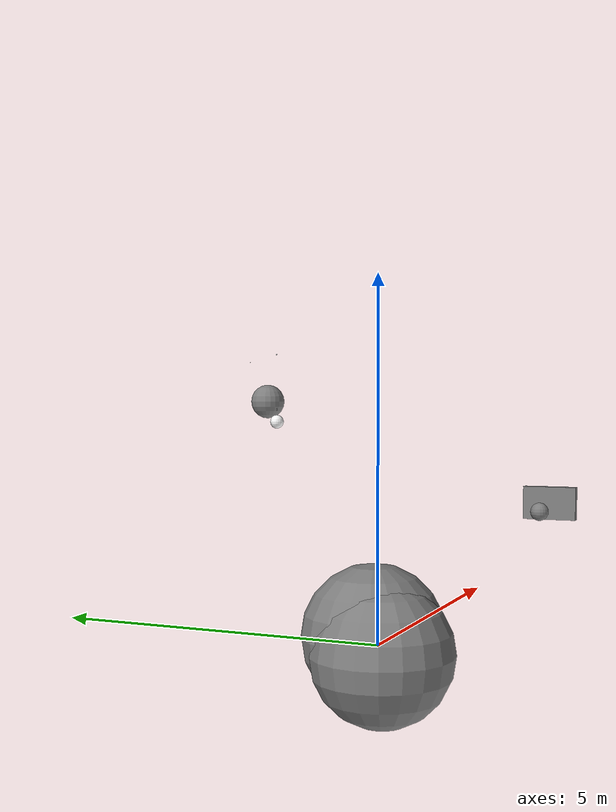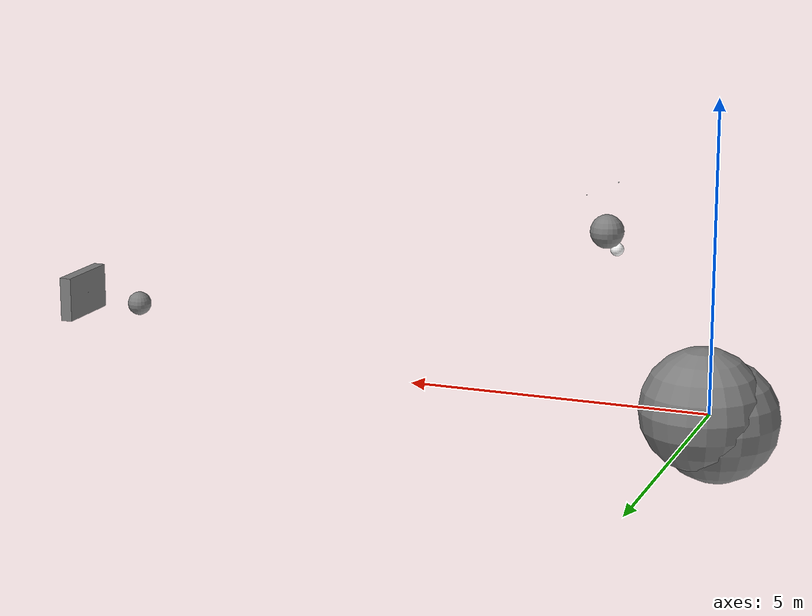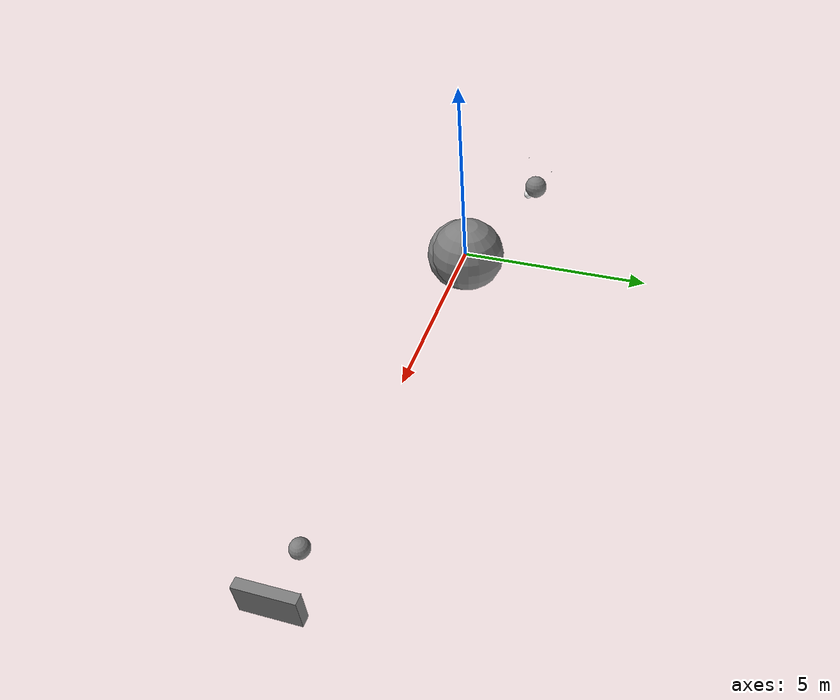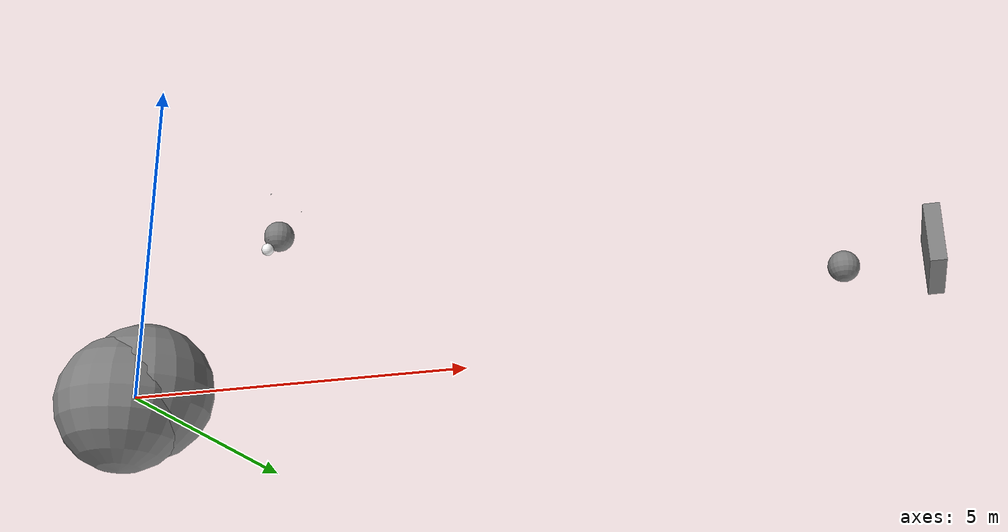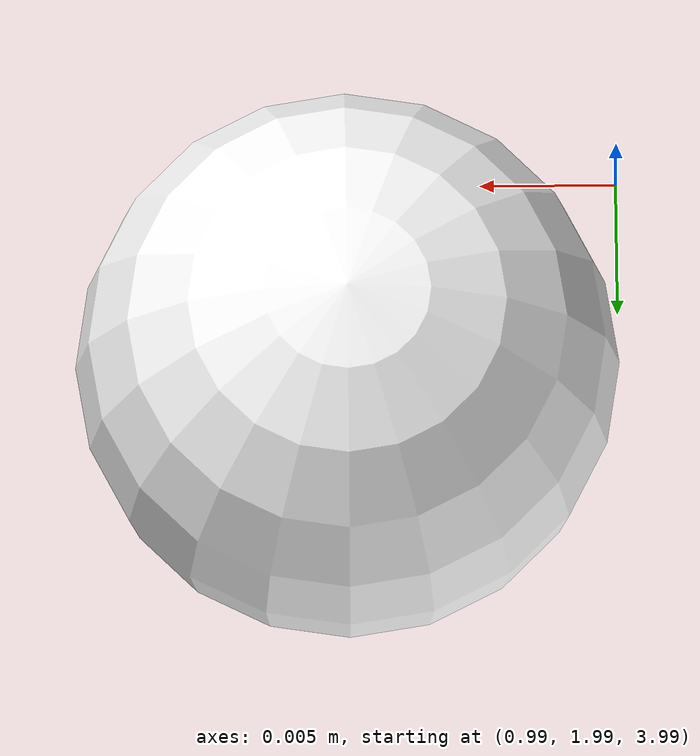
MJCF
<mujoco model="sensor">
  <asset>
    <material name="material"/>
  </asset>
  <worldbody>
    <!-- tree 0 -->
    <body name="body0" pos="1 2 3">
      <joint name="hinge0" type="hinge" axis="1 0 0"/>
      <geom size="0.1" material="material"/>
      <site name="site_rangefinder0" pos="-1e-3 0 0.2"/>
      <site name="site_rangefinder1" pos="-1e-3 0 0.175"/>
      <site name="site0" pos=".1 .2 .3"/>
      <body name="body1" pos="0.1 0.2 0.3">
        <joint name="hinge1" type="hinge" axis="0 1 0"/>
        <geom size="0.25"/>
        <site name="site1" pos=".2 .4 .6"/>
      </body>
    </body>

    <!-- body 2 -->
    <body name="body2" pos=".1 .1 .1">
      <joint name="ballquat2" type="ball" pos="0.1 0.1 0.1"/>
      <geom size="1"/>
    </body>

    <!-- body 3 -->
    <body name="body3" pos="-.1 -.1 -.1">
      <joint name="ballquat3" type="ball" pos="0.1 0.2 0.3"/>
      <geom size="1"/>
      <site name="site3"/>
    </body>

    <!-- bodies for camera projection -->
    <body pos="11.1 0 1">
      <geom type="box" size=".1 .6 .375"/>
      <site name="frontorigin" pos="-.1  .6  .375"/>
      <site name="frontcenter" pos="-.1 0 0"/>
    </body>
    <body pos="10 0 0">
      <joint axis="0 0 1" range="-180 180" limited="false"/>
      <geom type="sphere" size=".2" pos="0 0 0.9"/>
      <camera pos="0 0 1" xyaxes="0 -1 0 0 0 1" fovy="41.11209"
              resolution="1920 1200" name="fixedcamera"/>
    </body>

    <!-- body for rangefinder -->
    <body name="body_rangefinder" pos="1 2 4">
      <geom size="0.01" material="material"/>
    </body>
  </worldbody>

  <actuator>
    <motor name="motor0" joint="hinge0" ctrlrange="-1 1" gear="10"
      ctrllimited="true"/>
    <motor name="motor1" joint="hinge1" ctrlrange="-1 1" gear="10"
      ctrllimited="true"/>
  </actuator>

  <sensor>
    <magnetometer name="magnetometer0" site="site0"/>
    <velocimeter name="velocimeter0" site="site0"/>
    <velocimeter name="velocimeter0cutoff" site="site0" cutoff="3e-4"/>
    <gyro name="gyro0" site="site0"/>
    <gyro name="gyro0cutoff" site="site0" cutoff="2e-3"/>
    <rangefinder name="rangefinder0" site="site_rangefinder0"/>
    <jointpos name="jointpos0" joint="hinge0"/>
    <jointpos name="jointpos0cutoff" joint="hinge0" cutoff="1e-4"/>
    <jointvel name="jointvel0" joint="hinge0"/>
    <jointvel name="jointvel0cutoff" joint="hinge0" cutoff="1e-3"/>
    <actuatorfrc name="actuatorfrc0" actuator="motor0"/>
    <actuatorpos name="actuatorpos0" actuator="motor0"/>
    <actuatorvel name="actuatorvel0" actuator="motor0"/>
    <ballquat name="ballquat2" joint="ballquat2"/>
    <ballangvel name="ballangvel2" joint="ballquat2"/>
    <framexaxis name="framexaxis0" objtype="site" objname="site0"/>
    <jointactuatorfrc name="jointactfrc1" joint="hinge1"/>
    <framezaxis name="framezaxis0" objtype="site" objname="site0"/>
    <framequat name="framequat3" objtype="site" objname="site3"/>
    <frameyaxis name="frameyaxis0" objtype="site" objname="site0"/>
    <framepos name="framepos0" objtype="site" objname="site0"/>
    <velocimeter name="velocimeter1" site="site1"/>
    <gyro name="gyro1" site="site1"/>
    <actuatorfrc name="actuatorfrc1" actuator="motor1"/>
    <subtreecom name="subtreecom0" body="body0"/>
    <camprojection site="frontorigin" camera="fixedcamera"/>
    <magnetometer name="magnetometer1" site="site1"/>
    <jointpos name="jointpos1" joint="hinge1"/>
    <jointvel name="jointvel1" joint="hinge1"/>
    <actuatorpos name="actuatorpos1" actuator="motor1"/>
    <actuatorvel name="actuatorvel1" actuator="motor1"/>
    <framepos name="framepos1" objtype="site" objname="site1"/>
    <jointactuatorfrc name="jointactfrc0" joint="hinge0"/>
    <framezaxis name="framezaxis1" objtype="site" objname="site1"/>
    <framexaxis name="framexaxis1" objtype="site" objname="site1"/>
    <ballquat name="ballquat3" joint="ballquat3"/>
    <camprojection site="frontcenter" camera="fixedcamera"/>
    <ballangvel name="ballangvel3" joint="ballquat3"/>
    <frameyaxis name="frameyaxis1" objtype="site" objname="site1"/>
    <framequat name="framequat0" objtype="site" objname="site0"/>
    <rangefinder name="rangefinder1" site="site_rangefinder1"/>
    <subtreecom name="subtreecom1" body="body1"/>
    <clock/>
  </sensor>
</mujoco>
